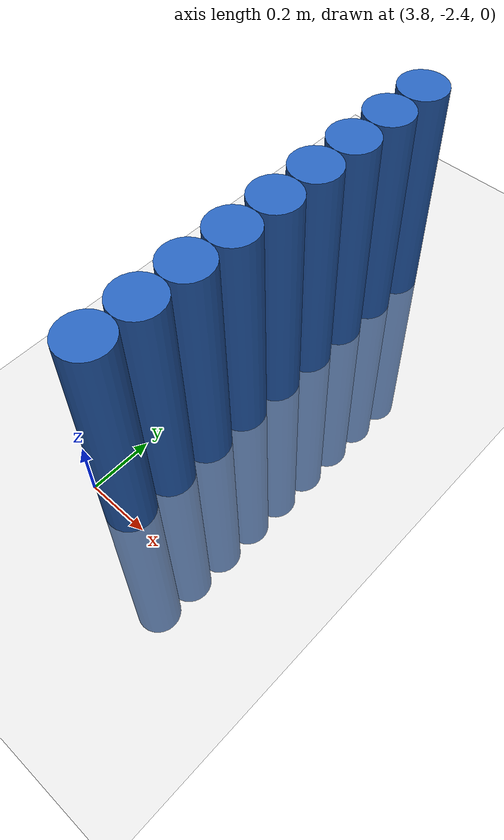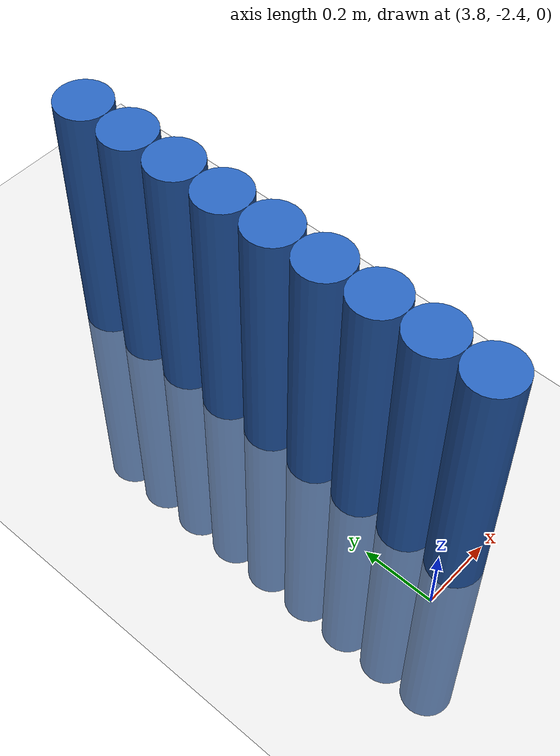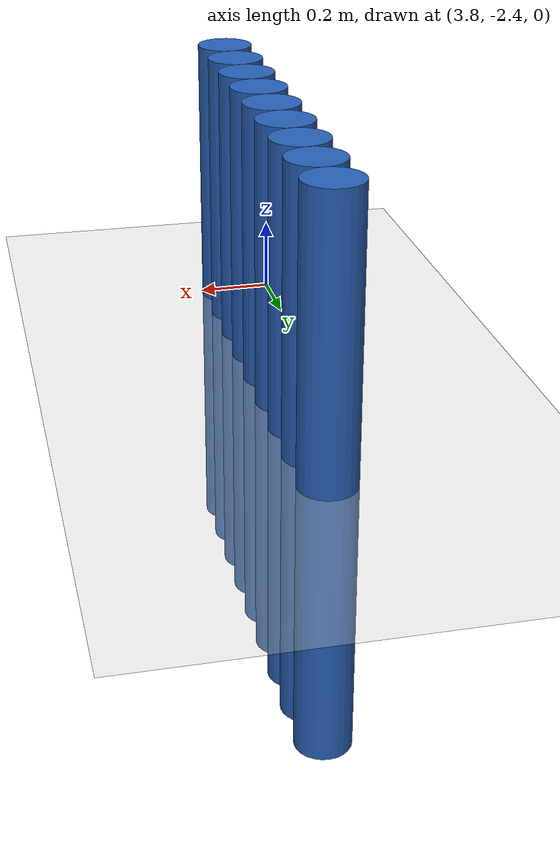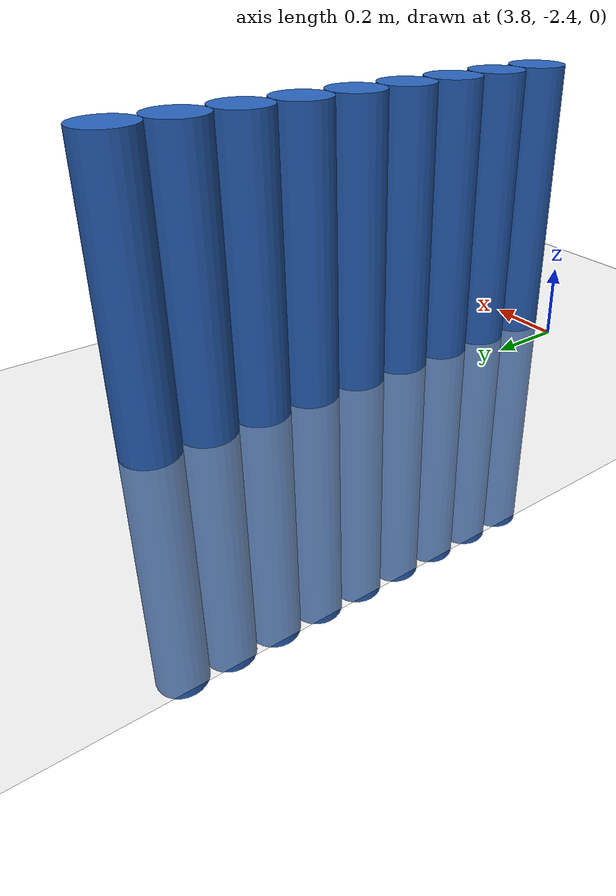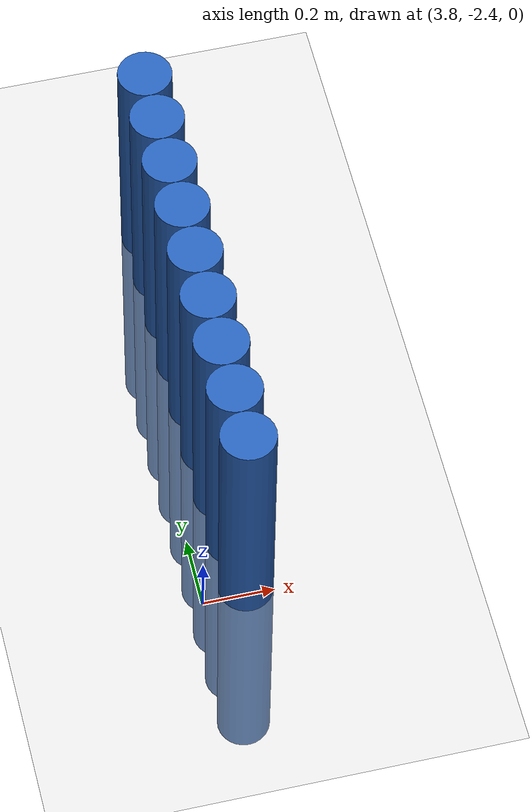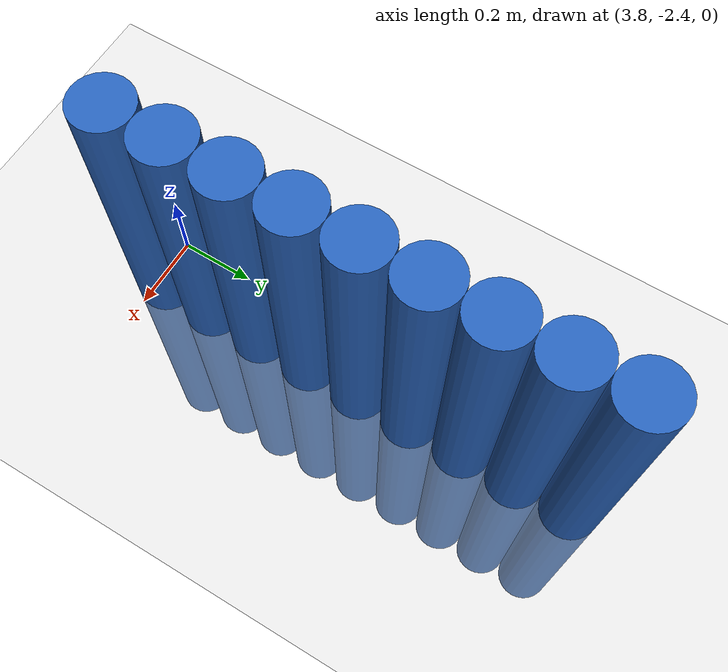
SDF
<sdf version="1.6">
 <world name="default">
  <model name="ground_plane">
   <static>1</static>
   <link name="link">
    <collision name="collision">
     <geometry><plane><normal>0 0 1</normal><size>100 100</size></plane></geometry>
     <surface><friction><ode><mu>100</mu><mu2>50</mu2></ode></friction></surface>
    </collision>
    <visual name="visual">
     <cast_shadows>0</cast_shadows>
     <geometry><plane><normal>0 0 1</normal><size>100 100</size></plane></geometry>
     <material>
      <script><uri>file://media/materials/scripts/gazebo.material</uri><name>Gazebo/Grey</name></script>
     </material>
    </visual>
   </link>
  </model>
  <model name="unit_cylinder_82">
   <static>1</static>
   <pose>3.925000 -2.375000 0.000000 0.000000 0.000000 0.000000</pose>
   <link name="link">
    <inertial>
     <mass>1</mass>
     <inertia><ixx>0.145833</ixx><ixy>0</ixy><ixz>0</ixz><iyy>0.145833</iyy><iyz>0</iyz><izz>0.125</izz></inertia>
    </inertial>
    <collision name="collision">
     <geometry><cylinder><radius>0.075000</radius><length>1.5</length></cylinder></geometry>
    </collision>
    <visual name="visual">
     <geometry><cylinder><radius>0.075000</radius><length>1.5</length></cylinder></geometry>
     <material>
      <ambient>0.152000 0.379000 0.720000 1</ambient>
      <diffuse>0.152000 0.379000 0.720000 1</diffuse>
     </material>
     <material>
      <script><name>Gazebo/Grey</name><uri>file://media/materials/scripts/gazebo.material</uri></script>
     </material>
    </visual>
   </link>
  </model>
  <model name="unit_cylinder_84">
   <static>1</static>
   <pose>3.925000 -2.225000 0.000000 0.000000 0.000000 0.000000</pose>
   <link name="link">
    <inertial>
     <mass>1</mass>
     <inertia><ixx>0.145833</ixx><ixy>0</ixy><ixz>0</ixz><iyy>0.145833</iyy><iyz>0</iyz><izz>0.125</izz></inertia>
    </inertial>
    <collision name="collision">
     <geometry><cylinder><radius>0.075000</radius><length>1.5</length></cylinder></geometry>
    </collision>
    <visual name="visual">
     <geometry><cylinder><radius>0.075000</radius><length>1.5</length></cylinder></geometry>
     <material>
      <ambient>0.152000 0.379000 0.720000 1</ambient>
      <diffuse>0.152000 0.379000 0.720000 1</diffuse>
     </material>
     <material>
      <script><name>Gazebo/Grey</name><uri>file://media/materials/scripts/gazebo.material</uri></script>
     </material>
    </visual>
   </link>
  </model>
  <model name="unit_cylinder_86">
   <static>1</static>
   <pose>3.925000 -2.075000 0.000000 0.000000 0.000000 0.000000</pose>
   <link name="link">
    <inertial>
     <mass>1</mass>
     <inertia><ixx>0.145833</ixx><ixy>0</ixy><ixz>0</ixz><iyy>0.145833</iyy><iyz>0</iyz><izz>0.125</izz></inertia>
    </inertial>
    <collision name="collision">
     <geometry><cylinder><radius>0.075000</radius><length>1.5</length></cylinder></geometry>
    </collision>
    <visual name="visual">
     <geometry><cylinder><radius>0.075000</radius><length>1.5</length></cylinder></geometry>
     <material>
      <ambient>0.152000 0.379000 0.720000 1</ambient>
      <diffuse>0.152000 0.379000 0.720000 1</diffuse>
     </material>
     <material>
      <script><name>Gazebo/Grey</name><uri>file://media/materials/scripts/gazebo.material</uri></script>
     </material>
    </visual>
   </link>
  </model>
  <model name="unit_cylinder_88">
   <static>1</static>
   <pose>3.925000 -1.925000 0.000000 0.000000 0.000000 0.000000</pose>
   <link name="link">
    <inertial>
     <mass>1</mass>
     <inertia><ixx>0.145833</ixx><ixy>0</ixy><ixz>0</ixz><iyy>0.145833</iyy><iyz>0</iyz><izz>0.125</izz></inertia>
    </inertial>
    <collision name="collision">
     <geometry><cylinder><radius>0.075000</radius><length>1.5</length></cylinder></geometry>
    </collision>
    <visual name="visual">
     <geometry><cylinder><radius>0.075000</radius><length>1.5</length></cylinder></geometry>
     <material>
      <ambient>0.152000 0.379000 0.720000 1</ambient>
      <diffuse>0.152000 0.379000 0.720000 1</diffuse>
     </material>
     <material>
      <script><name>Gazebo/Grey</name><uri>file://media/materials/scripts/gazebo.material</uri></script>
     </material>
    </visual>
   </link>
  </model>
  <model name="unit_cylinder_90">
   <static>1</static>
   <pose>3.925000 -1.775000 0.000000 0.000000 0.000000 0.000000</pose>
   <link name="link">
    <inertial>
     <mass>1</mass>
     <inertia><ixx>0.145833</ixx><ixy>0</ixy><ixz>0</ixz><iyy>0.145833</iyy><iyz>0</iyz><izz>0.125</izz></inertia>
    </inertial>
    <collision name="collision">
     <geometry><cylinder><radius>0.075000</radius><length>1.5</length></cylinder></geometry>
    </collision>
    <visual name="visual">
     <geometry><cylinder><radius>0.075000</radius><length>1.5</length></cylinder></geometry>
     <material>
      <ambient>0.152000 0.379000 0.720000 1</ambient>
      <diffuse>0.152000 0.379000 0.720000 1</diffuse>
     </material>
     <material>
      <script><name>Gazebo/Grey</name><uri>file://media/materials/scripts/gazebo.material</uri></script>
     </material>
    </visual>
   </link>
  </model>
  <model name="unit_cylinder_92">
   <static>1</static>
   <pose>3.925000 -1.625000 0.000000 0.000000 0.000000 0.000000</pose>
   <link name="link">
    <inertial>
     <mass>1</mass>
     <inertia><ixx>0.145833</ixx><ixy>0</ixy><ixz>0</ixz><iyy>0.145833</iyy><iyz>0</iyz><izz>0.125</izz></inertia>
    </inertial>
    <collision name="collision">
     <geometry><cylinder><radius>0.075000</radius><length>1.5</length></cylinder></geometry>
    </collision>
    <visual name="visual">
     <geometry><cylinder><radius>0.075000</radius><length>1.5</length></cylinder></geometry>
     <material>
      <ambient>0.152000 0.379000 0.720000 1</ambient>
      <diffuse>0.152000 0.379000 0.720000 1</diffuse>
     </material>
     <material>
      <script><name>Gazebo/Grey</name><uri>file://media/materials/scripts/gazebo.material</uri></script>
     </material>
    </visual>
   </link>
  </model>
  <model name="unit_cylinder_94">
   <static>1</static>
   <pose>3.925000 -1.475000 0.000000 0.000000 0.000000 0.000000</pose>
   <link name="link">
    <inertial>
     <mass>1</mass>
     <inertia><ixx>0.145833</ixx><ixy>0</ixy><ixz>0</ixz><iyy>0.145833</iyy><iyz>0</iyz><izz>0.125</izz></inertia>
    </inertial>
    <collision name="collision">
     <geometry><cylinder><radius>0.075000</radius><length>1.5</length></cylinder></geometry>
    </collision>
    <visual name="visual">
     <geometry><cylinder><radius>0.075000</radius><length>1.5</length></cylinder></geometry>
     <material>
      <ambient>0.152000 0.379000 0.720000 1</ambient>
      <diffuse>0.152000 0.379000 0.720000 1</diffuse>
     </material>
     <material>
      <script><name>Gazebo/Grey</name><uri>file://media/materials/scripts/gazebo.material</uri></script>
     </material>
    </visual>
   </link>
  </model>
  <model name="unit_cylinder_96">
   <static>1</static>
   <pose>3.925000 -1.325000 0.000000 0.000000 0.000000 0.000000</pose>
   <link name="link">
    <inertial>
     <mass>1</mass>
     <inertia><ixx>0.145833</ixx><ixy>0</ixy><ixz>0</ixz><iyy>0.145833</iyy><iyz>0</iyz><izz>0.125</izz></inertia>
    </inertial>
    <collision name="collision">
     <geometry><cylinder><radius>0.075000</radius><length>1.5</length></cylinder></geometry>
    </collision>
    <visual name="visual">
     <geometry><cylinder><radius>0.075000</radius><length>1.5</length></cylinder></geometry>
     <material>
      <ambient>0.152000 0.379000 0.720000 1</ambient>
      <diffuse>0.152000 0.379000 0.720000 1</diffuse>
     </material>
     <material>
      <script><name>Gazebo/Grey</name><uri>file://media/materials/scripts/gazebo.material</uri></script>
     </material>
    </visual>
   </link>
  </model>
  <model name="unit_cylinder_98">
   <static>1</static>
   <pose>3.925000 -1.175000 0.000000 0.000000 0.000000 0.000000</pose>
   <link name="link">
    <inertial>
     <mass>1</mass>
     <inertia><ixx>0.145833</ixx><ixy>0</ixy><ixz>0</ixz><iyy>0.145833</iyy><iyz>0</iyz><izz>0.125</izz></inertia>
    </inertial>
    <collision name="collision">
     <geometry><cylinder><radius>0.075000</radius><length>1.5</length></cylinder></geometry>
    </collision>
    <visual name="visual">
     <geometry><cylinder><radius>0.075000</radius><length>1.5</length></cylinder></geometry>
     <material>
      <ambient>0.152000 0.379000 0.720000 1</ambient>
      <diffuse>0.152000 0.379000 0.720000 1</diffuse>
     </material>
     <material>
      <script><name>Gazebo/Grey</name><uri>file://media/materials/scripts/gazebo.material</uri></script>
     </material>
    </visual>
   </link>
  </model>
  <model name="unit_cylinder_485">
   <static>1</static>
   <pose>3.925000 -1.925000 0.000000 0.000000 0.000000 0.000000</pose>
   <link name="link">
    <inertial>
     <mass>1</mass>
     <inertia><ixx>0.145833</ixx><ixy>0</ixy><ixz>0</ixz><iyy>0.145833</iyy><iyz>0</iyz><izz>0.125</izz></inertia>
    </inertial>
    <collision name="collision">
     <geometry><cylinder><radius>0.075000</radius><length>1.5</length></cylinder></geometry>
    </collision>
    <visual name="visual">
     <geometry><cylinder><radius>0.075000</radius><length>1.5</length></cylinder></geometry>
     <material>
      <ambient>0.152000 0.379000 0.720000 1</ambient>
      <diffuse>0.152000 0.379000 0.720000 1</diffuse>
     </material>
     <material>
      <script><name>Gazebo/Grey</name><uri>file://media/materials/scripts/gazebo.material</uri></script>
     </material>
    </visual>
   </link>
  </model>
  <model name="unit_cylinder_486">
   <static>1</static>
   <pose>3.925000 -1.775000 0.000000 0.000000 0.000000 0.000000</pose>
   <link name="link">
    <inertial>
     <mass>1</mass>
     <inertia><ixx>0.145833</ixx><ixy>0</ixy><ixz>0</ixz><iyy>0.145833</iyy><iyz>0</iyz><izz>0.125</izz></inertia>
    </inertial>
    <collision name="collision">
     <geometry><cylinder><radius>0.075000</radius><length>1.5</length></cylinder></geometry>
    </collision>
    <visual name="visual">
     <geometry><cylinder><radius>0.075000</radius><length>1.5</length></cylinder></geometry>
     <material>
      <ambient>0.152000 0.379000 0.720000 1</ambient>
      <diffuse>0.152000 0.379000 0.720000 1</diffuse>
     </material>
     <material>
      <script><name>Gazebo/Grey</name><uri>file://media/materials/scripts/gazebo.material</uri></script>
     </material>
    </visual>
   </link>
  </model>
  <model name="unit_cylinder_487">
   <static>1</static>
   <pose>3.925000 -1.625000 0.000000 0.000000 0.000000 0.000000</pose>
   <link name="link">
    <inertial>
     <mass>1</mass>
     <inertia><ixx>0.145833</ixx><ixy>0</ixy><ixz>0</ixz><iyy>0.145833</iyy><iyz>0</iyz><izz>0.125</izz></inertia>
    </inertial>
    <collision name="collision">
     <geometry><cylinder><radius>0.075000</radius><length>1.5</length></cylinder></geometry>
    </collision>
    <visual name="visual">
     <geometry><cylinder><radius>0.075000</radius><length>1.5</length></cylinder></geometry>
     <material>
      <ambient>0.152000 0.379000 0.720000 1</ambient>
      <diffuse>0.152000 0.379000 0.720000 1</diffuse>
     </material>
     <material>
      <script><name>Gazebo/Grey</name><uri>file://media/materials/scripts/gazebo.material</uri></script>
     </material>
    </visual>
   </link>
  </model>
  <model name="unit_cylinder_488">
   <static>1</static>
   <pose>3.925000 -1.475000 0.000000 0.000000 0.000000 0.000000</pose>
   <link name="link">
    <inertial>
     <mass>1</mass>
     <inertia><ixx>0.145833</ixx><ixy>0</ixy><ixz>0</ixz><iyy>0.145833</iyy><iyz>0</iyz><izz>0.125</izz></inertia>
    </inertial>
    <collision name="collision">
     <geometry><cylinder><radius>0.075000</radius><length>1.5</length></cylinder></geometry>
    </collision>
    <visual name="visual">
     <geometry><cylinder><radius>0.075000</radius><length>1.5</length></cylinder></geometry>
     <material>
      <ambient>0.152000 0.379000 0.720000 1</ambient>
      <diffuse>0.152000 0.379000 0.720000 1</diffuse>
     </material>
     <material>
      <script><name>Gazebo/Grey</name><uri>file://media/materials/scripts/gazebo.material</uri></script>
     </material>
    </visual>
   </link>
  </model>
  <model name="unit_cylinder_489">
   <static>1</static>
   <pose>3.925000 -1.325000 0.000000 0.000000 0.000000 0.000000</pose>
   <link name="link">
    <inertial>
     <mass>1</mass>
     <inertia><ixx>0.145833</ixx><ixy>0</ixy><ixz>0</ixz><iyy>0.145833</iyy><iyz>0</iyz><izz>0.125</izz></inertia>
    </inertial>
    <collision name="collision">
     <geometry><cylinder><radius>0.075000</radius><length>1.5</length></cylinder></geometry>
    </collision>
    <visual name="visual">
     <geometry><cylinder><radius>0.075000</radius><length>1.5</length></cylinder></geometry>
     <material>
      <ambient>0.152000 0.379000 0.720000 1</ambient>
      <diffuse>0.152000 0.379000 0.720000 1</diffuse>
     </material>
     <material>
      <script><name>Gazebo/Grey</name><uri>file://media/materials/scripts/gazebo.material</uri></script>
     </material>
    </visual>
   </link>
  </model>
 </world>
</sdf>
